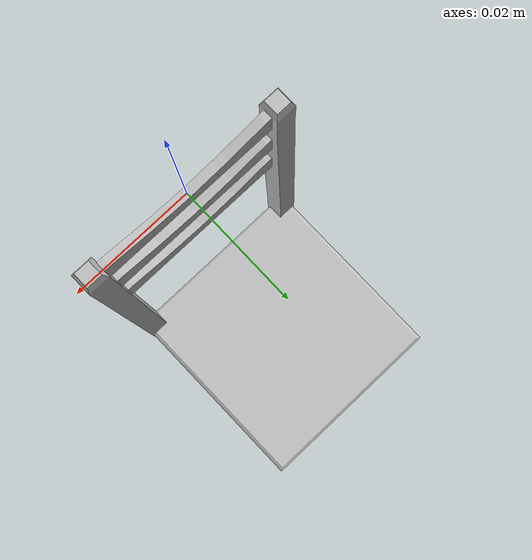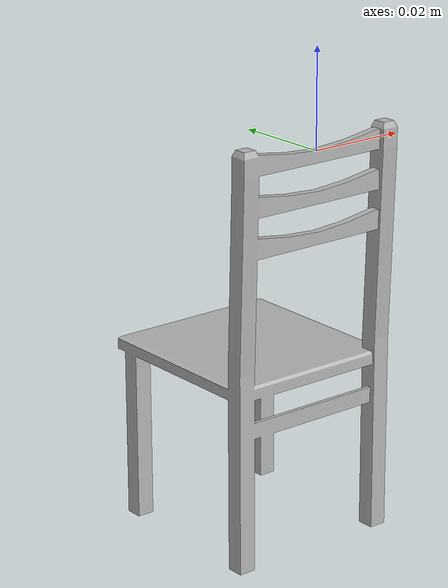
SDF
<?xml version="1.0" ?>
<sdf version="1.7">
  <model name="chair">
    <static>true</static>

    <link name="link">
      <visual name="visual">
        <geometry>
          <mesh>
            <uri>model://chair/chair.dae</uri>
            <scale>0.01 0.01 0.01</scale>
          </mesh>
        </geometry>
      </visual>

      <collision name="collision">
        <geometry>
          <mesh>
            <uri>model://chair/chair.dae</uri>
          </mesh>
        </geometry>
      </collision>
    </link>
  </model>
</sdf>
